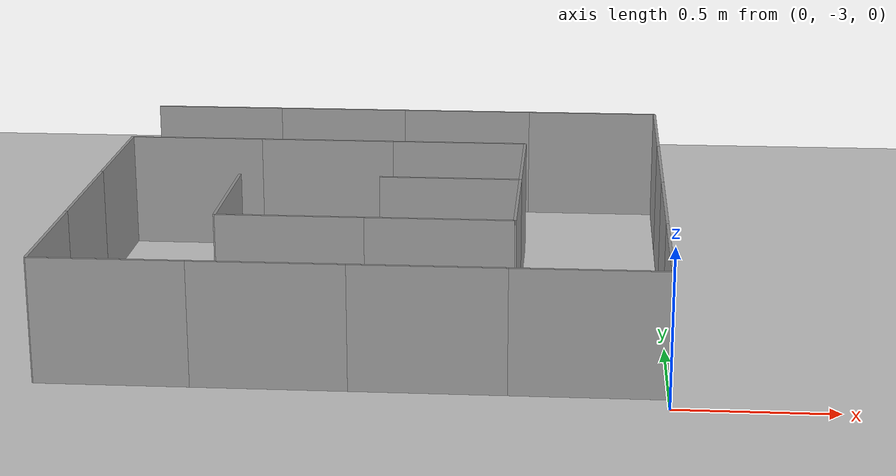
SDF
<sdf version="1.6">
 <world name="default">
  <include><uri>model://maze_model</uri></include>
  <include><uri>model://ground_plane</uri></include>
  <include><uri>model://sun</uri></include>
  <scene><shadows>false</shadows></scene>
  <physics type="ode">
   <real_time_update_rate>1000.0</real_time_update_rate>
   <max_step_size>0.001</max_step_size>
   <real_time_factor>1</real_time_factor>
   <ode>
    <solver>
     <type>quick</type>
     <iters>150</iters>
     <precon_iters>0</precon_iters>
     <sor>1.400000</sor>
     <use_dynamic_moi_rescaling>1</use_dynamic_moi_rescaling>
    </solver>
    <constraints>
     <cfm>0.00001</cfm>
     <erp>0.2</erp>
     <contact_max_correcting_vel>2000.000000</contact_max_correcting_vel>
     <contact_surface_layer>0.01000</contact_surface_layer>
    </constraints>
   </ode>
  </physics>
 </world>
</sdf>

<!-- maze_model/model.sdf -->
<sdf version="1.6">
  <!--Generated maze model-->
  <model name="maze">
    <static>1</static>
    <link name="wall_0">
      <pose>0.0 -1.24 0.2 0 0 0</pose>
      <collision name="wall_0_collision">
        <geometry>
          <box>
            <size>0.01 0.48 0.4</size>
          </box>
        </geometry>
      </collision>
      <visual name="wall_0_visual">
        <geometry>
          <box>
            <size>0.01 0.48 0.4</size>
          </box>
        </geometry>
        <material>
          <script>
            <uri>file://media/materials/scripts/gazebo.material</uri>
            <name>Gazebo/Grey</name>
          </script>
        </material>
        <meta>
          <meta>0</meta>
        </meta>
      </visual>
    </link>
    <link name="wall_1">
      <pose>0.0 -1.72 0.2 0 0 0</pose>
      <collision name="wall_1_collision">
        <geometry>
          <box>
            <size>0.01 0.48 0.4</size>
          </box>
        </geometry>
      </collision>
      <visual name="wall_1_visual">
        <geometry>
          <box>
            <size>0.01 0.48 0.4</size>
          </box>
        </geometry>
        <material>
          <script>
            <uri>file://media/materials/scripts/gazebo.material</uri>
            <name>Gazebo/Grey</name>
          </script>
        </material>
        <meta>
          <meta>0</meta>
        </meta>
      </visual>
    </link>
    <link name="wall_2">
      <pose>0.0 -2.2 0.2 0 0 0</pose>
      <collision name="wall_2_collision">
        <geometry>
          <box>
            <size>0.01 0.48 0.4</size>
          </box>
        </geometry>
      </collision>
      <visual name="wall_2_visual">
        <geometry>
          <box>
            <size>0.01 0.48 0.4</size>
          </box>
        </geometry>
        <material>
          <script>
            <uri>file://media/materials/scripts/gazebo.material</uri>
            <name>Gazebo/Grey</name>
          </script>
        </material>
        <meta>
          <meta>0</meta>
        </meta>
      </visual>
    </link>
    <link name="wall_3">
      <pose>0.0 -2.6799999999999997 0.2 0 0 0</pose>
      <collision name="wall_3_collision">
        <geometry>
          <box>
            <size>0.01 0.48 0.4</size>
          </box>
        </geometry>
      </collision>
      <visual name="wall_3_visual">
        <geometry>
          <box>
            <size>0.01 0.48 0.4</size>
          </box>
        </geometry>
        <material>
          <script>
            <uri>file://media/materials/scripts/gazebo.material</uri>
            <name>Gazebo/Grey</name>
          </script>
        </material>
        <meta>
          <meta>0</meta>
        </meta>
      </visual>
    </link>
    <link name="wall_4">
      <pose>-0.48 -1.72 0.2 0 0 0</pose>
      <collision name="wall_4_collision">
        <geometry>
          <box>
            <size>0.01 0.48 0.4</size>
          </box>
        </geometry>
      </collision>
      <visual name="wall_4_visual">
        <geometry>
          <box>
            <size>0.01 0.48 0.4</size>
          </box>
        </geometry>
        <material>
          <script>
            <uri>file://media/materials/scripts/gazebo.material</uri>
            <name>Gazebo/Grey</name>
          </script>
        </material>
        <meta>
          <meta>0</meta>
        </meta>
      </visual>
    </link>
    <link name="wall_5">
      <pose>-0.48 -2.2 0.2 0 0 0</pose>
      <collision name="wall_5_collision">
        <geometry>
          <box>
            <size>0.01 0.48 0.4</size>
          </box>
        </geometry>
      </collision>
      <visual name="wall_5_visual">
        <geometry>
          <box>
            <size>0.01 0.48 0.4</size>
          </box>
        </geometry>
        <material>
          <script>
            <uri>file://media/materials/scripts/gazebo.material</uri>
            <name>Gazebo/Grey</name>
          </script>
        </material>
        <meta>
          <meta>0</meta>
        </meta>
      </visual>
    </link>
    <link name="wall_6">
      <pose>-1.44 -2.2 0.2 0 0 0</pose>
      <collision name="wall_6_collision">
        <geometry>
          <box>
            <size>0.01 0.48 0.4</size>
          </box>
        </geometry>
      </collision>
      <visual name="wall_6_visual">
        <geometry>
          <box>
            <size>0.01 0.48 0.4</size>
          </box>
        </geometry>
        <material>
          <script>
            <uri>file://media/materials/scripts/gazebo.material</uri>
            <name>Gazebo/Grey</name>
          </script>
        </material>
        <meta>
          <meta>0</meta>
        </meta>
      </visual>
    </link>
    <link name="wall_7">
      <pose>-1.92 -1.72 0.2 0 0 0</pose>
      <collision name="wall_7_collision">
        <geometry>
          <box>
            <size>0.01 0.48 0.4</size>
          </box>
        </geometry>
      </collision>
      <visual name="wall_7_visual">
        <geometry>
          <box>
            <size>0.01 0.48 0.4</size>
          </box>
        </geometry>
        <material>
          <script>
            <uri>file://media/materials/scripts/gazebo.material</uri>
            <name>Gazebo/Grey</name>
          </script>
        </material>
        <meta>
          <meta>0</meta>
        </meta>
      </visual>
    </link>
    <link name="wall_8">
      <pose>-1.92 -2.2 0.2 0 0 0</pose>
      <collision name="wall_8_collision">
        <geometry>
          <box>
            <size>0.01 0.48 0.4</size>
          </box>
        </geometry>
      </collision>
      <visual name="wall_8_visual">
        <geometry>
          <box>
            <size>0.01 0.48 0.4</size>
          </box>
        </geometry>
        <material>
          <script>
            <uri>file://media/materials/scripts/gazebo.material</uri>
            <name>Gazebo/Grey</name>
          </script>
        </material>
        <meta>
          <meta>0</meta>
        </meta>
      </visual>
    </link>
    <link name="wall_9">
      <pose>-1.92 -2.6799999999999997 0.2 0 0 0</pose>
      <collision name="wall_9_collision">
        <geometry>
          <box>
            <size>0.01 0.48 0.4</size>
          </box>
        </geometry>
      </collision>
      <visual name="wall_9_visual">
        <geometry>
          <box>
            <size>0.01 0.48 0.4</size>
          </box>
        </geometry>
        <material>
          <script>
            <uri>file://media/materials/scripts/gazebo.material</uri>
            <name>Gazebo/Grey</name>
          </script>
        </material>
        <meta>
          <meta>0</meta>
        </meta>
      </visual>
    </link>
    <link name="wall_10">
      <pose>-0.24 -1.0 0.2 0 0 0</pose>
      <collision name="wall_10_collision">
        <geometry>
          <box>
            <size>0.48 0.01 0.4</size>
          </box>
        </geometry>
      </collision>
      <visual name="wall_10_visual">
        <geometry>
          <box>
            <size>0.48 0.01 0.4</size>
          </box>
        </geometry>
        <material>
          <script>
            <uri>file://media/materials/scripts/gazebo.material</uri>
            <name>Gazebo/Grey</name>
          </script>
        </material>
        <meta>
          <meta>0</meta>
        </meta>
      </visual>
    </link>
    <link name="wall_11">
      <pose>-0.24 -2.92 0.2 0 0 0</pose>
      <collision name="wall_11_collision">
        <geometry>
          <box>
            <size>0.48 0.01 0.4</size>
          </box>
        </geometry>
      </collision>
      <visual name="wall_11_visual">
        <geometry>
          <box>
            <size>0.48 0.01 0.4</size>
          </box>
        </geometry>
        <material>
          <script>
            <uri>file://media/materials/scripts/gazebo.material</uri>
            <name>Gazebo/Grey</name>
          </script>
        </material>
        <meta>
          <meta>0</meta>
        </meta>
      </visual>
    </link>
    <link name="wall_12">
      <pose>-0.72 -1.0 0.2 0 0 0</pose>
      <collision name="wall_12_collision">
        <geometry>
          <box>
            <size>0.48 0.01 0.4</size>
          </box>
        </geometry>
      </collision>
      <visual name="wall_12_visual">
        <geometry>
          <box>
            <size>0.48 0.01 0.4</size>
          </box>
        </geometry>
        <material>
          <script>
            <uri>file://media/materials/scripts/gazebo.material</uri>
            <name>Gazebo/Grey</name>
          </script>
        </material>
        <meta>
          <meta>0</meta>
        </meta>
      </visual>
    </link>
    <link name="wall_13">
      <pose>-0.72 -1.48 0.2 0 0 0</pose>
      <collision name="wall_13_collision">
        <geometry>
          <box>
            <size>0.48 0.01 0.4</size>
          </box>
        </geometry>
      </collision>
      <visual name="wall_13_visual">
        <geometry>
          <box>
            <size>0.48 0.01 0.4</size>
          </box>
        </geometry>
        <material>
          <script>
            <uri>file://media/materials/scripts/gazebo.material</uri>
            <name>Gazebo/Grey</name>
          </script>
        </material>
        <meta>
          <meta>0</meta>
        </meta>
      </visual>
    </link>
    <link name="wall_14">
      <pose>-0.72 -1.96 0.2 0 0 0</pose>
      <collision name="wall_14_collision">
        <geometry>
          <box>
            <size>0.48 0.01 0.4</size>
          </box>
        </geometry>
      </collision>
      <visual name="wall_14_visual">
        <geometry>
          <box>
            <size>0.48 0.01 0.4</size>
          </box>
        </geometry>
        <material>
          <script>
            <uri>file://media/materials/scripts/gazebo.material</uri>
            <name>Gazebo/Grey</name>
          </script>
        </material>
        <meta>
          <meta>0</meta>
        </meta>
      </visual>
    </link>
    <link name="wall_15">
      <pose>-0.72 -2.44 0.2 0 0 0</pose>
      <collision name="wall_15_collision">
        <geometry>
          <box>
            <size>0.48 0.01 0.4</size>
          </box>
        </geometry>
      </collision>
      <visual name="wall_15_visual">
        <geometry>
          <box>
            <size>0.48 0.01 0.4</size>
          </box>
        </geometry>
        <material>
          <script>
            <uri>file://media/materials/scripts/gazebo.material</uri>
            <name>Gazebo/Grey</name>
          </script>
        </material>
        <meta>
          <meta>0</meta>
        </meta>
      </visual>
    </link>
    <link name="wall_16">
      <pose>-0.72 -2.92 0.2 0 0 0</pose>
      <collision name="wall_16_collision">
        <geometry>
          <box>
            <size>0.48 0.01 0.4</size>
          </box>
        </geometry>
      </collision>
      <visual name="wall_16_visual">
        <geometry>
          <box>
            <size>0.48 0.01 0.4</size>
          </box>
        </geometry>
        <material>
          <script>
            <uri>file://media/materials/scripts/gazebo.material</uri>
            <name>Gazebo/Grey</name>
          </script>
        </material>
        <meta>
          <meta>0</meta>
        </meta>
      </visual>
    </link>
    <link name="wall_17">
      <pose>-1.2 -1.0 0.2 0 0 0</pose>
      <collision name="wall_17_collision">
        <geometry>
          <box>
            <size>0.48 0.01 0.4</size>
          </box>
        </geometry>
      </collision>
      <visual name="wall_17_visual">
        <geometry>
          <box>
            <size>0.48 0.01 0.4</size>
          </box>
        </geometry>
        <material>
          <script>
            <uri>file://media/materials/scripts/gazebo.material</uri>
            <name>Gazebo/Grey</name>
          </script>
        </material>
        <meta>
          <meta>0</meta>
        </meta>
      </visual>
    </link>
    <link name="wall_18">
      <pose>-1.2 -1.48 0.2 0 0 0</pose>
      <collision name="wall_18_collision">
        <geometry>
          <box>
            <size>0.48 0.01 0.4</size>
          </box>
        </geometry>
      </collision>
      <visual name="wall_18_visual">
        <geometry>
          <box>
            <size>0.48 0.01 0.4</size>
          </box>
        </geometry>
        <material>
          <script>
            <uri>file://media/materials/scripts/gazebo.material</uri>
            <name>Gazebo/Grey</name>
          </script>
        </material>
        <meta>
          <meta>0</meta>
        </meta>
      </visual>
    </link>
    <link name="wall_19">
      <pose>-1.2 -2.44 0.2 0 0 0</pose>
      <collision name="wall_19_collision">
        <geometry>
          <box>
            <size>0.48 0.01 0.4</size>
          </box>
        </geometry>
      </collision>
      <visual name="wall_19_visual">
        <geometry>
          <box>
            <size>0.48 0.01 0.4</size>
          </box>
        </geometry>
        <material>
          <script>
            <uri>file://media/materials/scripts/gazebo.material</uri>
            <name>Gazebo/Grey</name>
          </script>
        </material>
        <meta>
          <meta>0</meta>
        </meta>
      </visual>
    </link>
    <link name="wall_20">
      <pose>-1.2 -2.92 0.2 0 0 0</pose>
      <collision name="wall_20_collision">
        <geometry>
          <box>
            <size>0.48 0.01 0.4</size>
          </box>
        </geometry>
      </collision>
      <visual name="wall_20_visual">
        <geometry>
          <box>
            <size>0.48 0.01 0.4</size>
          </box>
        </geometry>
        <material>
          <script>
            <uri>file://media/materials/scripts/gazebo.material</uri>
            <name>Gazebo/Grey</name>
          </script>
        </material>
        <meta>
          <meta>0</meta>
        </meta>
      </visual>
    </link>
    <link name="wall_21">
      <pose>-1.68 -1.0 0.2 0 0 0</pose>
      <collision name="wall_21_collision">
        <geometry>
          <box>
            <size>0.48 0.01 0.4</size>
          </box>
        </geometry>
      </collision>
      <visual name="wall_21_visual">
        <geometry>
          <box>
            <size>0.48 0.01 0.4</size>
          </box>
        </geometry>
        <material>
          <script>
            <uri>file://media/materials/scripts/gazebo.material</uri>
            <name>Gazebo/Grey</name>
          </script>
        </material>
        <meta>
          <meta>0</meta>
        </meta>
      </visual>
    </link>
    <link name="wall_22">
      <pose>-1.68 -1.48 0.2 0 0 0</pose>
      <collision name="wall_22_collision">
        <geometry>
          <box>
            <size>0.48 0.01 0.4</size>
          </box>
        </geometry>
      </collision>
      <visual name="wall_22_visual">
        <geometry>
          <box>
            <size>0.48 0.01 0.4</size>
          </box>
        </geometry>
        <material>
          <script>
            <uri>file://media/materials/scripts/gazebo.material</uri>
            <name>Gazebo/Grey</name>
          </script>
        </material>
        <meta>
          <meta>0</meta>
        </meta>
      </visual>
    </link>
    <link name="wall_23">
      <pose>-1.68 -2.92 0.2 0 0 0</pose>
      <collision name="wall_23_collision">
        <geometry>
          <box>
            <size>0.48 0.01 0.4</size>
          </box>
        </geometry>
      </collision>
      <visual name="wall_23_visual">
        <geometry>
          <box>
            <size>0.48 0.01 0.4</size>
          </box>
        </geometry>
        <material>
          <script>
            <uri>file://media/materials/scripts/gazebo.material</uri>
            <name>Gazebo/Grey</name>
          </script>
        </material>
        <meta>
          <meta>0</meta>
        </meta>
      </visual>
    </link>
  </model>
</sdf>
